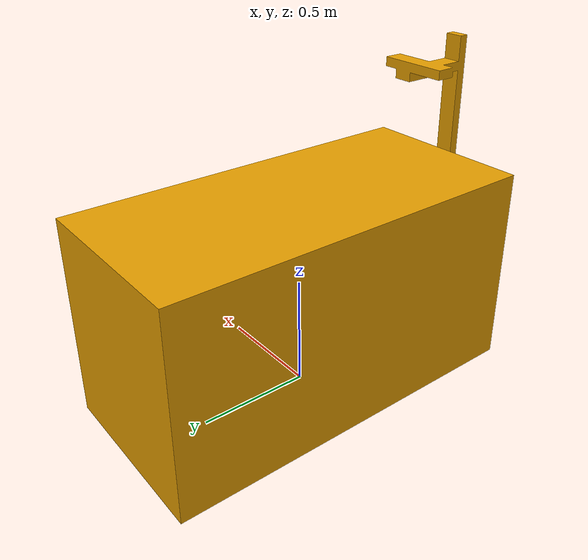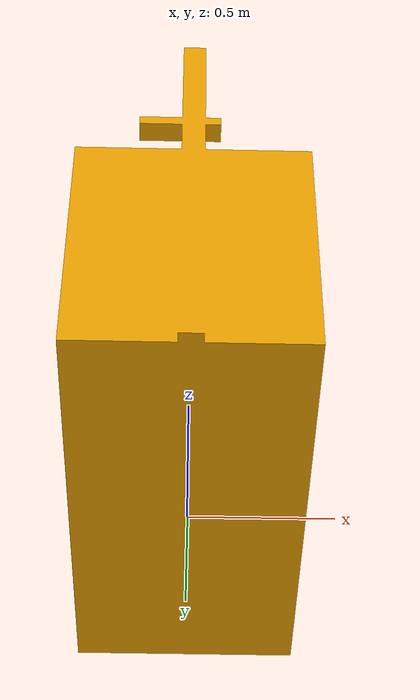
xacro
<?xml version="1.0" ?>

<robot xmlns:xacro="http://www.ros.org/wiki/xacro" name="workbench">

<link name="workbench">
      <visual>
        <origin rpy="0 0 0" xyz="0 0 0"/>
        <geometry>
          <mesh filename="package://borg_arm_gazebo/meshes/workbench.dae"/>
        </geometry>
      </visual>
      <collision>
        <origin rpy="0 0 0" xyz="0 0 0"/>
        <geometry>
          <mesh filename="package://borg_arm_gazebo/meshes/workbenchCollisionBlock_lowResolution.stl"/>
        </geometry>
      </collision>
      <inertial>
        <origin rpy="0 0 0" xyz="-0.00018927 -0.03484865 0.71266426"/>
        <mass value="168.29041803"/>
        <inertia ixx="5.15489764e+1" ixy="-1.77304290e-2" ixz="2.01410915e-2"
                 iyy="1.81733218e+1" iyz="-1.77374273e-2"
                 izz="5.32533290e+1"/>
      </inertial>
</link>

</robot>
